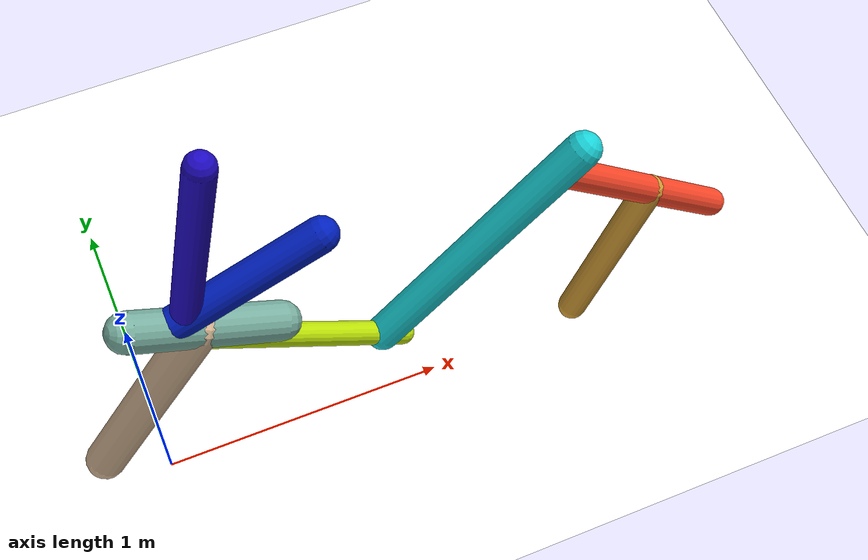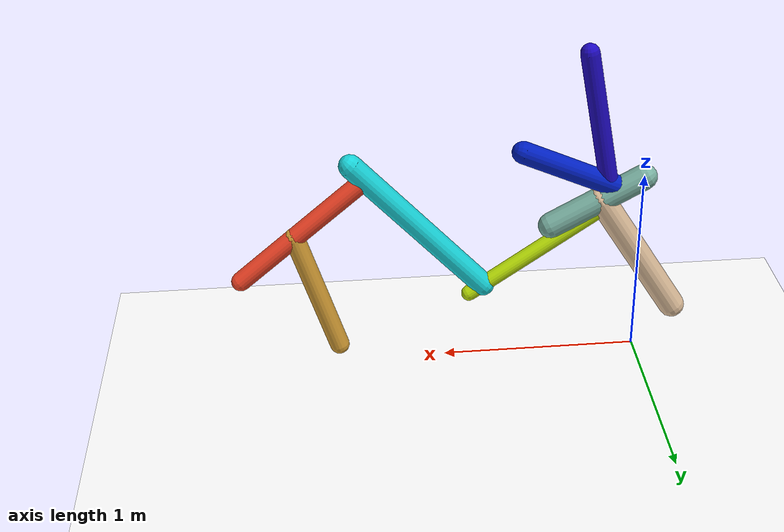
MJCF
<mujoco model="morphology">
  <option timestep="0.01"/>
  <default>
    <default class="/"/>
    <default class="0/"/>
    <default class="0/1/"/>
    <default class="0/1/2/"/>
    <default class="0/1/2/3/"/>
    <default class="0/1/2/3/4/"/>
    <default class="0/1/2/3/4/5/"/>
    <default class="0/6/"/>
    <default class="0/6/7/"/>
  </default>
  <asset>
    <texture name="texplane" type="2d" builtin="checker" rgb1="0.10000000000000001 0.20000000000000001 0.29999999999999999" rgb2="0.20000000000000001 0.29999999999999999 0.40000000000000002" width="300" height="300"/>
    <material name="MatPlane" class="/" texture="texplane" texrepeat="20 20" specular="1" shininess="1" reflectance="0.5"/>
  </asset>
  <worldbody>
    <light name="//unnamed_light_0" class="/" directional="true" pos="0 0 1.5" dir="0 0 -1.3" cutoff="100" exponent="1" diffuse="1 1 1" specular="0.10000000000000001 0.10000000000000001 0.10000000000000001"/>
    <geom name="ground" class="/" type="plane" size="15 15 0.5" material="MatPlane" rgba="1 1 1 1"/>
    <site name="body" class="/" size="9.9999999999999995e-07 9.9999999999999995e-07 9.9999999999999995e-07" pos="0 0 0.9954811096191406"/>
    <body pos="0 0 0.9954811096191406" name="0/">
      <joint name="0/rootx/" class="/" type="slide" axis="1 0 0" limited="false" stiffness="0" armature="0" damping="0"/>
      <joint name="0/rootz/" class="/" type="slide" axis="0 0 1" limited="false" stiffness="0" armature="0" damping="0"/>
      <joint name="0/rooty/" class="/" type="hinge" axis="0 1 0" limited="false" stiffness="0" armature="0" damping="0"/>
      <geom name="0/geom" class="0/" type="capsule" contype="1" conaffinity="1" condim="3" size="0.064876857319158487" rgba="0.47907099625301008 0.69500722431768713 0.63648663643751979 1" friction="0.59999999999999998 0.10000000000000001 0.10000000000000001" fromto="0 0 0 0.45974127493438655 0 -0.24890655232507619"/>
      <site name="0/end0" class="0/" size="0.0050000000000000001" pos="0.45974127493438655 0 -0.24890655232507619"/>
      <site name="0/attach1" class="0/" size="9.9999999999999995e-07 9.9999999999999995e-07 9.9999999999999995e-07" pos="0.21121566065153552 0 -0.11435336515595665"/>
      <body pos="0.21121566065153552 0 -0.11435336515595665" name="0/1/">
        <geom name="0/1/geom" class="0/1/" type="capsule" contype="1" conaffinity="1" condim="3" size="0.06724618132258417" rgba="0.87263243162634474 0.74636091189011011 0.60841741207069511 1" friction="0.59999999999999998 0.10000000000000001 0.10000000000000001" fromto="0 0 0 -0.4085596127314558 0 -0.6507701439133986"/>
        <site name="0/1/end1" class="0/1/" size="0.0050000000000000001" pos="-0.4085596127314558 0 -0.6507701439133986"/>
        <site name="0/1/attach2" class="0/1/" size="9.9999999999999995e-07 9.9999999999999995e-07 9.9999999999999995e-07" pos="-0.024598233157354193 0 -0.039181052735010706"/>
        <body pos="-0.024598233157354193 0 -0.039181052735010706" name="0/1/2/">
          <joint name="0/1/2/joint/" class="0/1/" type="hinge" axis="0 1 0" limited="true" range="-64.496638179095527 64.496638179095527"/>
          <geom name="0/1/2/geom" class="0/1/2/" type="capsule" contype="1" conaffinity="1" condim="3" size="0.04064015203614614" rgba="0.75098722396230011 0.9021873963221767 0.029575870380630476 1" friction="0.59999999999999998 0.10000000000000001 0.10000000000000001" fromto="0 0 0 0.68355318924324893 0 -0.47077520465145489"/>
          <site name="0/1/2/end2" class="0/1/2/" size="0.0050000000000000001" pos="0.68355318924324893 0 -0.47077520465145489"/>
          <site name="0/1/2/attach3" class="0/1/2/" size="9.9999999999999995e-07 9.9999999999999995e-07 9.9999999999999995e-07" pos="0.61270051717548091 0 -0.42197771278438678"/>
          <body pos="0.61270051717548091 0 -0.42197771278438678" name="0/1/2/3/">
            <geom name="0/1/2/3/geom" class="0/1/2/3/" type="capsule" contype="1" conaffinity="1" condim="3" size="0.058647366218031911" rgba="0.096094193298923436 0.82581180990580194 0.84807650680589386 1" friction="0.59999999999999998 0.10000000000000001 0.10000000000000001" fromto="0 0 0 0.64524294045304798 0 0.71127169366646159"/>
            <site name="0/1/2/3/end3" class="0/1/2/3/" size="0.0050000000000000001" pos="0.64524294045304798 0 0.71127169366646159"/>
            <site name="0/1/2/3/attach4" class="0/1/2/3/" size="9.9999999999999995e-07 9.9999999999999995e-07 9.9999999999999995e-07" pos="0.57572525912744721 0 0.63464015562668441"/>
            <body pos="0.57572525912744721 0 0.63464015562668441" name="0/1/2/3/4/">
              <joint name="0/1/2/3/4/joint/" class="0/1/2/3/" type="hinge" axis="0 1 0" limited="true" range="-50.612686594544584 50.612686594544584"/>
              <geom name="0/1/2/3/4/geom" class="0/1/2/3/4/" type="capsule" contype="1" conaffinity="1" condim="3" size="0.048650456213703314" rgba="0.98768972691122847 0.27982460933682618 0.15819796496357907 1" friction="0.59999999999999998 0.10000000000000001 0.10000000000000001" fromto="0 0 0 0.64154722781140583 0 -0.53959977359023181"/>
              <site name="0/1/2/3/4/end4" class="0/1/2/3/4/" size="0.0050000000000000001" pos="0.64154722781140583 0 -0.53959977359023181"/>
              <site name="0/1/2/3/4/attach5" class="0/1/2/3/4/" size="9.9999999999999995e-07 9.9999999999999995e-07 9.9999999999999995e-07" pos="0.36137120560424113 0 -0.30394616681813502"/>
              <body pos="0.36137120560424113 0 -0.30394616681813502" name="0/1/2/3/4/5/">
                <joint name="0/1/2/3/4/5/joint/" class="0/1/2/3/4/" type="hinge" axis="0 1 0" limited="true" range="-67.467194663414119 67.467194663414119"/>
                <geom name="0/1/2/3/4/5/geom" class="0/1/2/3/4/5/" type="capsule" contype="1" conaffinity="1" condim="3" size="0.050462198338706417" rgba="0.84691076597464798 0.62806512700708605 0.2101712188510062 1" friction="0.59999999999999998 0.10000000000000001 0.10000000000000001" fromto="0 0 0 -0.1913305650168915 0 -0.65066295484698145"/>
                <site name="0/1/2/3/4/5/end5" class="0/1/2/3/4/5/" size="0.0050000000000000001" pos="-0.1913305650168915 0 -0.65066295484698145"/>
              </body>
            </body>
          </body>
        </body>
      </body>
      <site name="0/attach6" class="0/" size="9.9999999999999995e-07 9.9999999999999995e-07 9.9999999999999995e-07" pos="0.10681586886048702 0 -0.057830721541079308"/>
      <body pos="0.10681586886048702 0 -0.057830721541079308" name="0/6/">
        <joint name="0/6/joint/" class="0/" type="hinge" axis="0 1 0" limited="true" range="-31.977160525561771 31.977160525561771"/>
        <geom name="0/6/geom" class="0/6/" type="capsule" contype="1" conaffinity="1" condim="3" size="0.055768746321114823" rgba="0.0006388944647972572 0.12164116198361563 0.74778446129028775 1" friction="0.59999999999999998 0.10000000000000001 0.10000000000000001" fromto="0 0 0 0.50234169746099955 0 0.22411142439788612"/>
        <site name="0/6/end6" class="0/6/" size="0.0050000000000000001" pos="0.50234169746099955 0 0.22411142439788612"/>
        <site name="0/6/attach7" class="0/6/" size="9.9999999999999995e-07 9.9999999999999995e-07 9.9999999999999995e-07" pos="0.069537035415345547 0 0.031022796104934622"/>
        <body pos="0.069537035415345547 0 0.031022796104934622" name="0/6/7/">
          <joint name="0/6/7/joint/" class="0/6/" type="hinge" axis="0 1 0" limited="true" range="-55.424682122267058 55.424682122267058"/>
          <geom name="0/6/7/geom" class="0/6/7/" type="capsule" contype="1" conaffinity="1" condim="3" size="0.047504099495935662" rgba="0.12133232959874451 0.036929850438343514 0.75971917754754659 1" friction="0.59999999999999998 0.10000000000000001 0.10000000000000001" fromto="0 0 0 0.12979120207471384 0 0.69352639127766791"/>
          <site name="0/6/7/end7" class="0/6/7/" size="0.0050000000000000001" pos="0.12979120207471384 0 0.69352639127766791"/>
        </body>
      </body>
      <camera name="0/side" class="0/" mode="trackcom" pos="0.40000000000000002 -4 0.20000000000000001" quat="0.70699999999999996 0.70699999999999996 0 0"/>
    </body>
  </worldbody>
  <actuator>
    <motor name="0/1/2/motor" class="0/1/2/" ctrllimited="true" ctrlrange="-1 1" gear="63" joint="0/1/2/joint/"/>
    <motor name="0/1/2/3/4/motor" class="0/1/2/3/4/" ctrllimited="true" ctrlrange="-1 1" gear="81" joint="0/1/2/3/4/joint/"/>
    <motor name="0/1/2/3/4/5/motor" class="0/1/2/3/4/5/" ctrllimited="true" ctrlrange="-1 1" gear="73" joint="0/1/2/3/4/5/joint/"/>
    <motor name="0/6/motor" class="0/6/" ctrllimited="true" ctrlrange="-1 1" gear="59" joint="0/6/joint/"/>
    <motor name="0/6/7/motor" class="0/6/7/" ctrllimited="true" ctrlrange="-1 1" gear="53" joint="0/6/7/joint/"/>
  </actuator>
  <sensor>
    <subtreelinvel name="velocity" body="0/"/>
  </sensor>
</mujoco>
